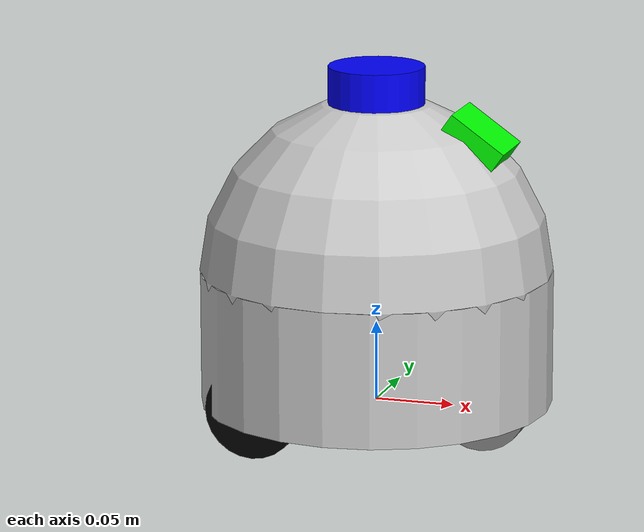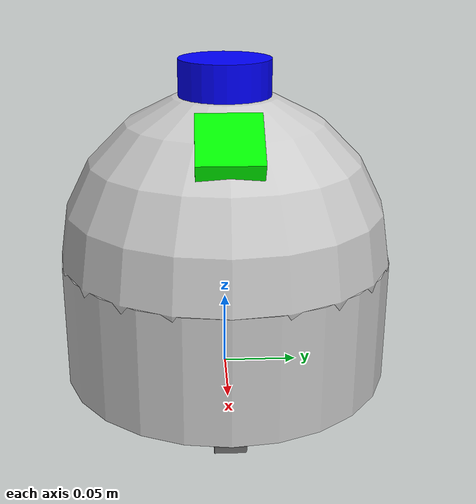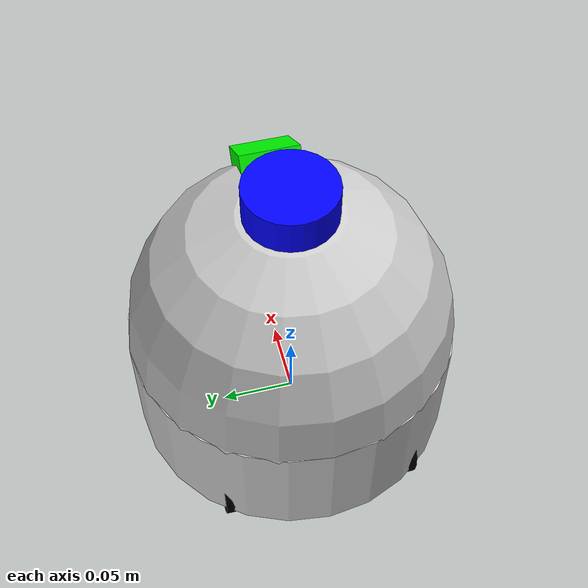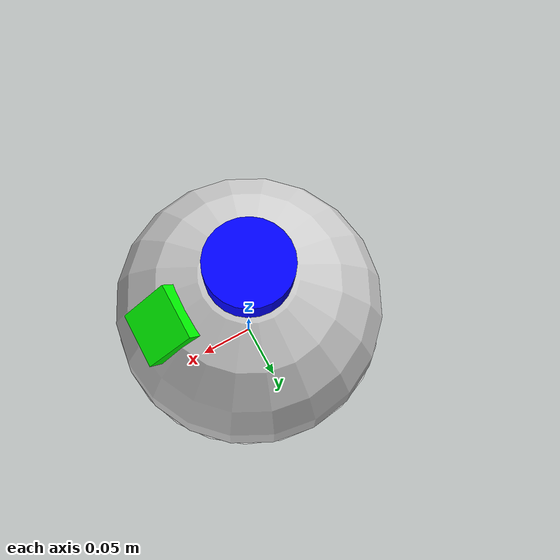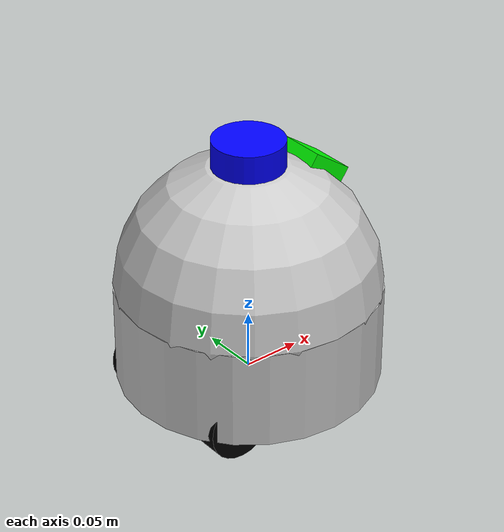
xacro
<?xml version="1.0"?>
<robot xmlns:xacro="http://ros.org/wiki/xacro" name="segurito">
  <!--  Escala del robot -->
  <xacro:property name="scale" value="1.0"/>

  <!-- Medidas adaptasdas al sistema de coordenadas de ros2-->
  <!-- 22 cm diametro-->
  <xacro:property name="base_radius" value="${0.11  * scale}"/>
  <!-- Cilindro 8.4 cm alto -->
  <xacro:property name="base_height" value="${0.084 * scale}"/>
  <!-- Cúpula: esfera radio 0.11 m -->
  <xacro:property name="dome_radius" value="${base_radius}"/>
  <!-- Altura total -->
  <xacro:property name="body_height" value="${base_height + dome_radius}"/>
  <xacro:property name="wheel_radius" value="${0.03 * scale}"/>
  <xacro:property name="wheel_width"  value="${0.02 * scale}"/>
  <!-- Posiciones escaladas (debug ya que el robot es muy pequeño) -->
  <xacro:property name="wheel_dx" value="${-0.06 * scale}"/>
  <xacro:property name="wheel_dy" value="${ 0.0575 * scale}"/>
  <xacro:property name="wheel_cz" value="${0.005 * scale}"/>
  <xacro:property name="lidar_z" value="${0.1928 * scale}"/>
  <xacro:property name="cam_x" value="${0.0645 * scale}"/>
  <xacro:property name="cam_z" value="${0.1696 * scale}"/>
  <xacro:property name="imu_x" value="${0.08 * scale}"/>
  <xacro:property name="imu_y" value="${0.04625* scale}"/>
  <xacro:property name="imu_z" value="${0.015 * scale}"/>
   <!-- Rueda loca -->
  <xacro:property name="center_wheel_radius" value="${0.03 * scale}"/>
  <xacro:property name="center_wheel_width"  value="${0.02 * scale}"/>
  <xacro:property name="center_wheel_x" value="0.07"/>
  <xacro:property name="center_wheel_y" value="0.0"/>
  <xacro:property name="center_wheel_z" value="${wheel_cz}"/>

  <xacro:macro name="default_inertial" params="">
    <inertial>
      <origin xyz="0 0 0" rpy="0 0 0"/>
      <mass value="${1.0 * scale * scale * scale}"/>
      <inertia ixx="0.01" iyy="0.01" izz="0.01"
               ixy="0" ixz="0" iyz="0"/>
    </inertial>
  </xacro:macro>

  <!-- Base -->
  <link name="base_link">
    <!-- Cilindro -->
    <visual>
      <origin xyz="0 0 ${base_height/2}" rpy="0 0 0"/>
      <geometry><cylinder radius="${base_radius}" length="${base_height}"/></geometry>
      <material name="white"><color rgba="0.8 0.8 0.8 1"/></material>
    </visual>
    <collision>
      <origin xyz="0 0 ${base_height/2}" rpy="0 0 0"/>
      <geometry><cylinder radius="${base_radius}" length="${base_height}"/></geometry>
    </collision>

    <!-- Cúpula -->
    <visual>
      <origin xyz="0 0 ${base_height}" rpy="0 0 0"/>
      <geometry><sphere radius="${dome_radius}"/></geometry>
      <material name="white"><color rgba="0.8 0.8 0.8 1"/></material>
    </visual>
    <xacro:default_inertial/>
  </link>

  <!-- Ruedas -->
  <xacro:macro name="wheel" params="name x y">
    <link name="${name}_link">
      <visual>
        <origin xyz="0 0 0" rpy="1.5708 0 0"/>
        <geometry><cylinder radius="${wheel_radius}" length="${wheel_width}"/></geometry>
        <material name="black"><color rgba="0 0 0 1"/></material>
      </visual>
      <collision>
        <origin xyz="0 0 0" rpy="1.5708 0 0"/>
        <geometry><cylinder radius="${wheel_radius}" length="${wheel_width}"/></geometry>
      </collision>
      <xacro:default_inertial/>
    </link>
    <joint name="${name}_joint" type="continuous">
      <parent link="base_link"/>
      <child  link="${name}_link"/>
      <origin xyz="${x} ${y} ${wheel_cz}" rpy="0 0 0"/>
      <axis xyz="0 1 0"/>
    </joint>
  </xacro:macro>
  <xacro:wheel name="left_wheel"  x="${wheel_dx}"  y="${wheel_dy}"/>
  <xacro:wheel name="right_wheel" x="${wheel_dx}"  y="${-wheel_dy}"/>

  <!--  Rueda loca -->
  <link name="center_wheel_link">
    <visual>
      <origin xyz="0 0 0" rpy="1.5708 0 0"/>
      <geometry>
        <cylinder radius="${center_wheel_radius}" length="${center_wheel_width}"/>
      </geometry>
      <material name="grey"><color rgba="0.5 0.5 0.5 1"/></material>
    </visual>
    <collision>
      <origin xyz="0 0 0" rpy="1.5708 0 0"/>
      <geometry>
        <cylinder radius="${center_wheel_radius}" length="${center_wheel_width}"/>
      </geometry>
    </collision>
    <xacro:default_inertial/>
  </link>

  <!-- Joint pasivo (sin motor) -->
  <joint name="center_wheel_joint" type="continuous">
    <parent link="base_link"/>
    <child  link="center_wheel_link"/>
    <origin xyz="${center_wheel_x} ${center_wheel_y} ${center_wheel_z}" rpy="0 0 0"/>
    <axis xyz="0 0 1"/>
  </joint>

  <!-- Sensor LiDAR-->
  <link name="lidar_link">
    <visual>
      <origin xyz="0 0 0" rpy="0 0 0"/>
      <geometry><cylinder radius="${0.03 * scale}" length="${0.04 * scale}"/></geometry>
      <material name="black"><color rgba="0 0 1 1"/></material>
    </visual>
    <collision>
      <origin xyz="0 0 0" rpy="0 0 0"/>
      <geometry><cylinder radius="${0.03 * scale}" length="${0.04 * scale}"/></geometry>
    </collision>
    <xacro:default_inertial/>
  </link>
  <joint name="lidar_joint" type="fixed">
    <parent link="base_link"/>
    <child  link="lidar_link"/>
    <origin xyz="0 0 ${lidar_z}" rpy="0 0 0"/>
  </joint>

  <!-- Cámara -->
  <link name="camera_link">
    <visual>
      <geometry><box size="${0.04 * scale} ${0.04 * scale} ${0.02 * scale}"/></geometry>
      <material name="gray"><color rgba="0 1 0 1"/></material>
    </visual>
    <xacro:default_inertial/>
  </link>
  <joint name="camera_joint" type="fixed">
    <parent link="base_link"/>
    <child  link="camera_link"/>
    <origin xyz="${cam_x} 0 ${cam_z}" rpy="0 0.6109 0"/>
  </joint>

  <!-- Acelerómetro -->
  <link name="imu_link">
    <visual>
      <geometry><sphere radius="${0.01 * scale}"/></geometry>
      <material name="red"><color rgba="1 0 0 1"/></material>
    </visual>
    <xacro:default_inertial/>
  </link>
  <joint name="imu_joint" type="fixed">
    <parent link="base_link"/>
    <child  link="imu_link"/>
    <origin xyz="${imu_x} ${imu_y} ${imu_z}" rpy="0 0 0"/>
  </joint>

  <ros2_control name="SeguritoHardware" type="system">
    <hardware>
      <plugin>gazebo_ros2_control/GazeboSystem</plugin>
    </hardware>

    <joint name="left_wheel_joint">
      <state_interface name="position"/>
      <state_interface name="velocity"/>
      <command_interface name="velocity"/>
    </joint>
    <joint name="right_wheel_joint">
      <state_interface name="position"/>
      <state_interface name="velocity"/>
      <command_interface name="velocity"/>
    </joint>
  </ros2_control>

  <transmission name="left_wheel_trans">
    <type>transmission_interface/SimpleTransmission</type>
    <joint name="left_wheel_joint">
      <hardwareInterface>hardware_interface/VelocityJointInterface</hardwareInterface>
    </joint>
    <actuator name="left_motor">
      <hardwareInterface>hardware_interface/VelocityJointInterface</hardwareInterface>
      <mechanicalReduction>1</mechanicalReduction>
    </actuator>
  </transmission>

  <transmission name="right_wheel_trans">
    <type>transmission_interface/SimpleTransmission</type>
    <joint name="right_wheel_joint">
      <hardwareInterface>hardware_interface/VelocityJointInterface</hardwareInterface>
    </joint>
    <actuator name="right_motor">
      <hardwareInterface>hardware_interface/VelocityJointInterface</hardwareInterface>
      <mechanicalReduction>1</mechanicalReduction>
    </actuator>
  </transmission>

  <gazebo>
    <plugin name="gazebo_ros2_control" filename="libgazebo_ros2_control.so">
      <parameters>
        /home/neverdiedooms/ros2_ws/install/segurito_description/\
  share/segurito_description/config/diff_drive.yaml
      </parameters>
    </plugin>
  </gazebo>
</robot>
